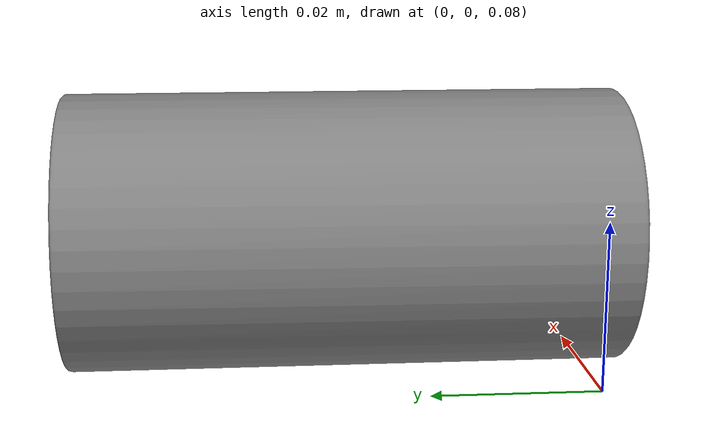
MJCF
<?xml version='1.0' encoding='utf8'?>
<mujoco model="cylinder_model">
    <compiler angle="degree" coordinate="local" />

    <option timestep="0.01" gravity="0 0 -9.81" />

    <asset>
        <mesh name="cylinder_vis" file="visual/cylinder.stl" scale="0.001 0.001 0.001" />
        <mesh name="cylinder_mesh" file="collision/cylinder.stl" scale="0.001 0.001 0.001" />
    </asset>

    <worldbody>
        <body>
            <body name="cylinder_body" pos="0 0 0.1">
                <geom solimp="0.998 0.998 0.001" solref="0.001 1" density="100" friction="0.95 0.3 0.1" type="mesh" mesh="cylinder_vis" conaffinity="0" contype="0" group="1" />
                <geom name="cylinder_geom" type="mesh" mesh="cylinder_mesh" rgba="0.65 0.54 0.44 0.7" mass="0.1" group="0" />
            </body>
        </body>
        <site rgba="0 0 0 0" size="0.005" pos="1.8000000023832283e-09 0.0001579002000000018 -0.03245274" name="bottom_site" />
        <site rgba="0 0 0 0" size="0.005" pos="1.8000000023832283e-09 0.0001579002000000018 0.033050489999999995" name="top_site" />
        <site rgba="0 0 0 0" size="0.005" pos="0.05891761439999999 0.057567376799999986 0.0002988749999999995" name="horizontal_radius_site" />
    </worldbody>
</mujoco>
